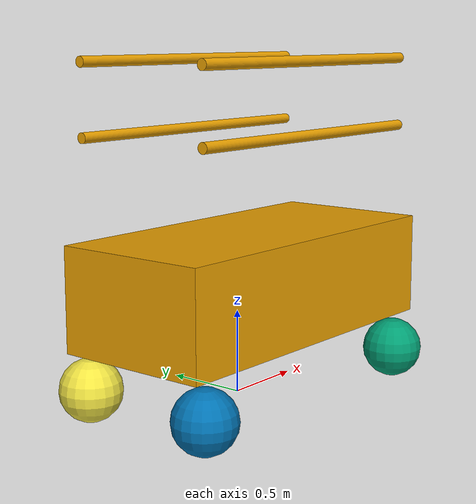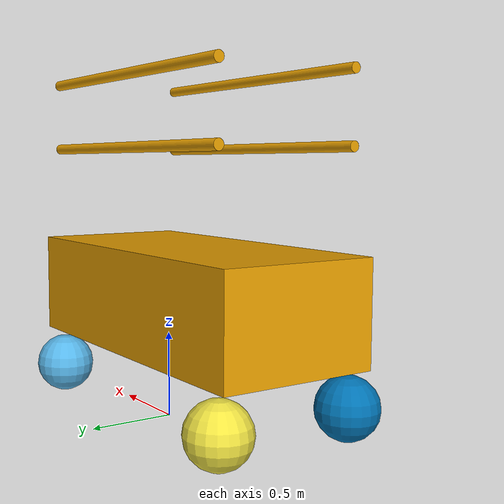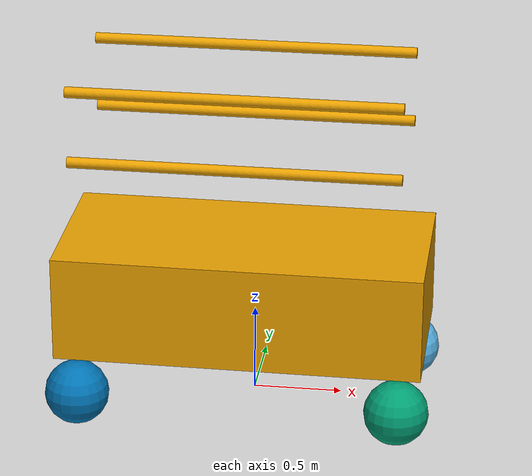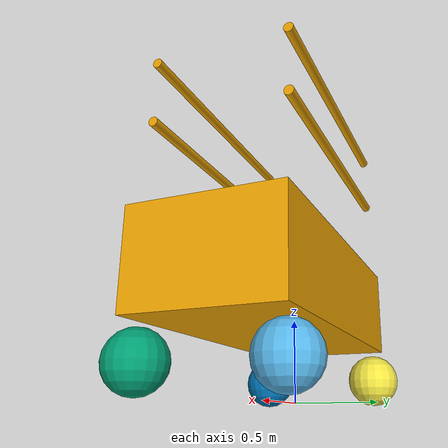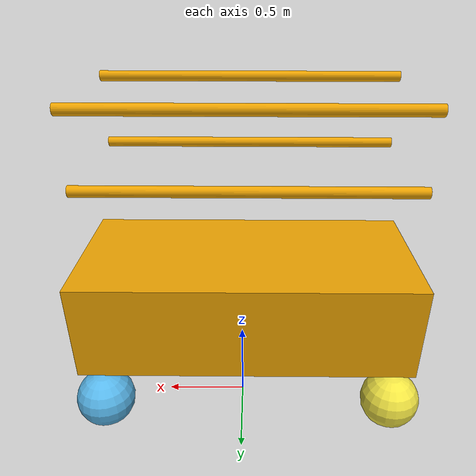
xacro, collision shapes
<?xml version="1.0"?>
<robot name="mecanum_lift" xmlns:xacro="http://www.ros.org/wiki/xacro">
    <xacro:arg name="controller_yaml_path" default=""/>

    <link name="chassis">
        <inertial>
            <mass value="1.14395"/>
            <inertia ixx="0.126164" ixy="0" ixz="0" iyy="0.416519" iyz="0" izz="0.481014"/>
        </inertial>
        <visual>
            <origin xyz="0 0 -0.084" rpy="1.57 0 0"/>
            <geometry>
                <mesh filename="file://$(find mec_mobile_description)/meshes/robot_lift/MecanumLift.dae" scale="0.6 0.6 0.6"/>
            </geometry>
            </visual>
        <collision>
            <origin xyz="-0.03 -0.132 0.708" rpy="0 0 0"/>
            <geometry>
                <box size="2.04 0.936 0.6"/>
            </geometry>
        </collision>
        <collision>
            <origin xyz="-0.042 0.294 1.98" rpy="0 1.57 0"/>
            <geometry>
                <cylinder radius="0.03" length="1.8"/>
            </geometry>
        </collision>
        <collision>
            <origin xyz="-0.042 0.294 1.578" rpy="0 1.57 0"/>
            <geometry>
                <cylinder radius="0.03" length="1.8"/>
            </geometry>
        </collision>
        <collision>
            <origin xyz="-0.042 -0.558 1.578" rpy="0 1.57 0"/>
            <geometry>
                <cylinder radius="0.03" length="1.8"/>
            </geometry>
        </collision>
        <collision>
            <origin xyz="-0.042 -0.558 1.98" rpy="0 1.57 0"/>
            <geometry>
                <cylinder radius="0.03" length="1.8"/>
            </geometry>
        </collision>
    </link>

    <xacro:macro name="wheel" params="prefix reflect parent_link x y z">
        <link name="${prefix}_wheel">
            <inertial>
                <mass value="2"/>
                <inertia ixx="0.145833" ixy="0" ixz="0" iyy="0.145833" iyz="0" izz="0.125"/>
            </inertial>
            <visual>
                <geometry>
                    <mesh filename="file://$(find mec_mobile_description)/meshes/robot_lift/mecanum_wheel_${reflect}.STL" scale="0.0036 0.0036 0.0036"/>
                </geometry>
            </visual>
            <collision>
                <geometry>
                    <sphere radius="0.18"/>
                </geometry>
            </collision>
        </link>

        <joint name="${prefix}_wheel_joint" type="revolute">
            <parent link="${parent_link}"/>
            <child link="${prefix}_wheel"/>
            <origin xyz="${x} ${y} ${z}" rpy="0 0 0"/>
            <axis xyz="0 1 0"/>
            <limit effort="100.0" velocity="10.0" lower="-1e16" upper="1e16"/>
            </joint>
    </xacro:macro>

    <xacro:wheel prefix="front_left" reflect="left" parent_link="chassis" x="0.858" y="0.282" z="0.186"/>
    <xacro:wheel prefix="front_right" reflect="right" parent_link="chassis" x="0.858" y="-0.552" z="0.186"/>
    <xacro:wheel prefix="rear_left" reflect="right" parent_link="chassis" x="-0.93" y="0.282" z="0.186"/>
    <xacro:wheel prefix="rear_right" reflect="left" parent_link="chassis" x="-0.93" y="-0.552" z="0.186"/>

    <ros2_control name="GazeboSystem" type="system">
        <hardware>
            <plugin>gz_ros2_control/GazeboSimSystem</plugin>
        </hardware>

        <joint name="front_left_wheel_joint">
            <command_interface name="velocity">
                <param name="min">-10</param>
                <param name="max">10</param>
            </command_interface>
            <state_interface name="position"/>
            <state_interface name="velocity"/>
        </joint>
        <joint name="front_right_wheel_joint">
            <command_interface name="velocity">
                <param name="min">-10</param>
                <param name="max">10</param>
            </command_interface>
            <state_interface name="position"/>
            <state_interface name="velocity"/>
        </joint>
        <joint name="rear_left_wheel_joint">
            <command_interface name="velocity">
                <param name="min">-10</param>
                <param name="max">10</param>
            </command_interface>
            <state_interface name="position"/>
            <state_interface name="velocity"/>
        </joint>
        <joint name="rear_right_wheel_joint">
            <command_interface name="velocity">
                <param name="min">-10</param>
                <param name="max">10</param>
            </command_interface>
            <state_interface name="position"/>
            <state_interface name="velocity"/>
        </joint>
    </ros2_control>

    <gazebo>
    <plugin filename="gz_ros2_control-system" name="gz_ros2_control::GazeboSimROS2ControlPlugin">
      <parameters>$(arg controller_yaml_path)</parameters>
      <ros>
        <remapping>/mecanum_drive_controller/reference:=/cmd_vel</remapping>
        <remapping>/mecanum_drive_controller/odom:=/odom</remapping>
      </ros>
    </plugin>
  </gazebo>

</robot>
